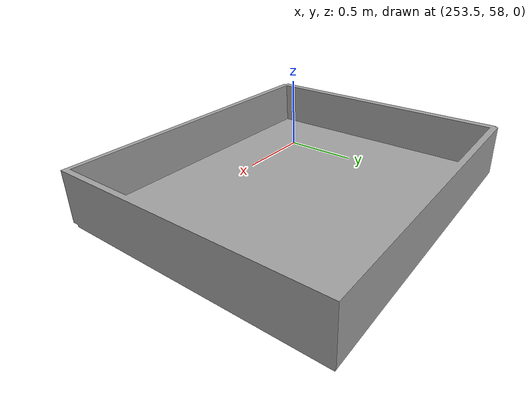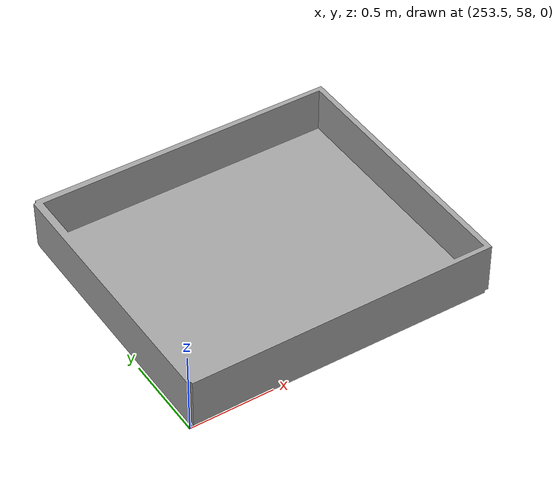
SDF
<sdf version="1.6">
 <world name="default">
  <model name="Blue_Mailbox">
   <link name="link">
    <inertial>
     <mass>40</mass>
     <inertia><ixx>0.5</ixx><ixy>0</ixy><ixz>0</ixz><iyy>0.5</iyy><iyz>0</iyz><izz>1</izz></inertia>
    </inertial>
    <visual name="ModelPreview_4::link::visual_1">
     <geometry><mesh><uri>model://Blue_Mailbox/meshes/blue.dae</uri><scale>1 1 1</scale></mesh></geometry>
     <material><shader type="pixel"/></material>
    </visual>
    <visual name="visual">
     <geometry><mesh><uri>model://Blue_Mailbox/meshes/blue.dae</uri><scale>1 1 1</scale></mesh></geometry>
     <material>
      <emissive>0 0 1 0</emissive>
      <shader type="vertex"><normal_map>__default__</normal_map></shader>
     </material>
    </visual>
    <collision name="collision">
     <geometry><box><size>1.2 1.2 0.3</size></box></geometry>
     <surface>
      <friction>
       <ode><mu>1</mu><mu2>1</mu2><fdir1>0 0 0</fdir1><slip1>0</slip1><slip2>0</slip2></ode>
       <torsional>
        <coefficient>1</coefficient>
        <patch_radius>0</patch_radius>
        <surface_radius>0</surface_radius>
        <use_patch_radius>1</use_patch_radius>
        <ode><slip>0</slip></ode>
       </torsional>
      </friction>
      <bounce><restitution_coefficient>0</restitution_coefficient><threshold>1e+06</threshold></bounce>
      <contact>
       <collide_without_contact>0</collide_without_contact>
       <collide_without_contact_bitmask>1</collide_without_contact_bitmask>
       <collide_bitmask>1</collide_bitmask>
       <ode>
        <soft_cfm>0</soft_cfm>
        <soft_erp>0.2</soft_erp>
        <kp>1e+13</kp>
        <kd>1</kd>
        <max_vel>0.1</max_vel>
        <min_depth>0.001</min_depth>
       </ode>
       <bullet>
        <split_impulse>1</split_impulse>
        <split_impulse_penetration_threshold>-0.01</split_impulse_penetration_threshold>
        <soft_cfm>0</soft_cfm>
        <soft_erp>0.2</soft_erp>
        <kp>1e+13</kp>
        <kd>1</kd>
       </bullet>
      </contact>
     </surface>
    </collision>
   </link>
   <static>0</static>
   <pose>254.352 58.6791 0.14902 0 -0 0</pose>
  </model>
 </world>
</sdf>
